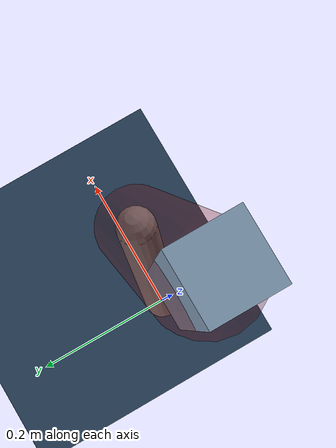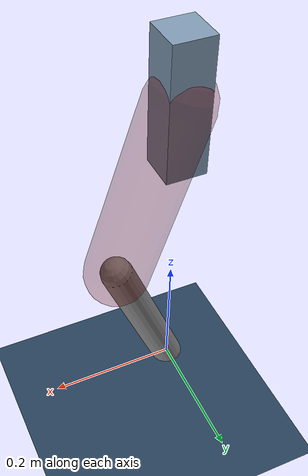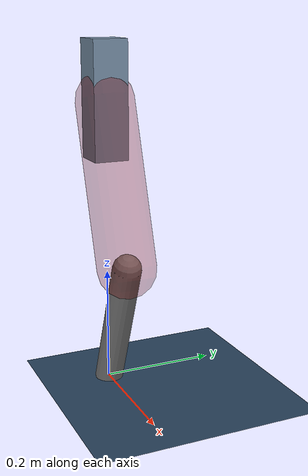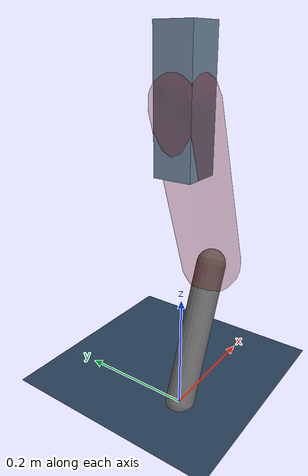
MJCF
<mujoco model="Hopper2D">
	<compiler inertiafromgeom="true" angle="radian" />
	<option timestep="0.001" integrator="implicit" cone="elliptic" solver="Newton" tolerance="1e-10" />

	<default>
		<geom contype="1" conaffinity="1" condim="3" friction="2 0.005 0.0001" solref="0.005 1" />
		<joint limited="true" damping="0.1" />
	</default>

	<asset>
		<texture name="skybox" type="skybox" builtin="gradient" rgb1=".4 .6 .8" rgb2="0 0 0" width="800" height="800" />
		<texture name="grid" type="2d" builtin="checker" rgb1=".1 .2 .3" rgb2=".2 .3 .4" width="300" height="300" mark="edge" markrgb=".2 .3 .4" />
		<material name="ground" texture="grid" texrepeat="1 1" texuniform="true" reflectance="0.1" />
		<material name="leg" rgba="0.5 0.6 0.7 1" />
	</asset>

	<worldbody>

		<geom name="floor" type="plane" size="5 5 0.25" material="ground" />

		<light directional="false" diffuse="0.8 0.8 0.8" specular="0.3 0.3 0.3" pos="0 0 2" dir="0 0 -1" />
		<light mode="targetbodycom" target="base" directional="false" diffuse="0.8 0.8 0.8" specular="0.3 0.3 0.3" pos="0 0 2" dir="0 0 -1" />

		<camera name="fixed" pos="0 -2 1" xyaxes="1 0 0 0 0 1" />
		<camera name="tracking" mode="trackcom" pos="0 -3 1" />

		<body name="root" pos="0 0 0.5018109340510613">
			<joint name="slide_x" type="slide" axis="1 0 0" range="-100 100" />
			<joint name="slide_z" type="slide" axis="0 0 1" range="0 10" />

			<body name="base" pos="0 0 0">
				<geom name="torso" type="box" size="0.03 0.03 0.1" mass="3.0469999999999997" material="leg" />

				<body name="link1" pos="0 0 0" euler="0 1.2459712721461507 0">
					<joint type="hinge" axis="0 -1 0" pos="0 0 0" name="hinge1" limited="true" range="-3.14 3.14" stiffness="0" damping="0.1" />
					<geom name="thigh" type="capsule" fromto="0 0 0 0.2846337340535383 0 0" size="0.05" rgba="0.5 0 0 0.3" mass="0.9474477085391997" />

					<body name="link2" pos="0.2846337340535383 0 0" euler="0 0.6979328043323396 0">
						<joint type="hinge" axis="0 -1 0" pos="0 0 0" name="hinge2" limited="true" range="-3.14 3.14" stiffness="0" damping="0.1" />
						<geom name="shank" type="capsule" fromto="0 0 0 0.24920738160954808 0 0" size="0.025" mass="0.44186590528763847" />

					</body>
				</body>
			</body>
		</body>
	</worldbody>

	<actuator>
		<motor name="torque1" joint="hinge1" ctrlrange="-149.91063657266528 149.91063657266528" ctrllimited="true" gear="1" />
		<motor name="torque2" joint="hinge2" ctrlrange="-45.61300304157014 45.61300304157014" ctrllimited="true" gear="1" />
	</actuator>
</mujoco>
